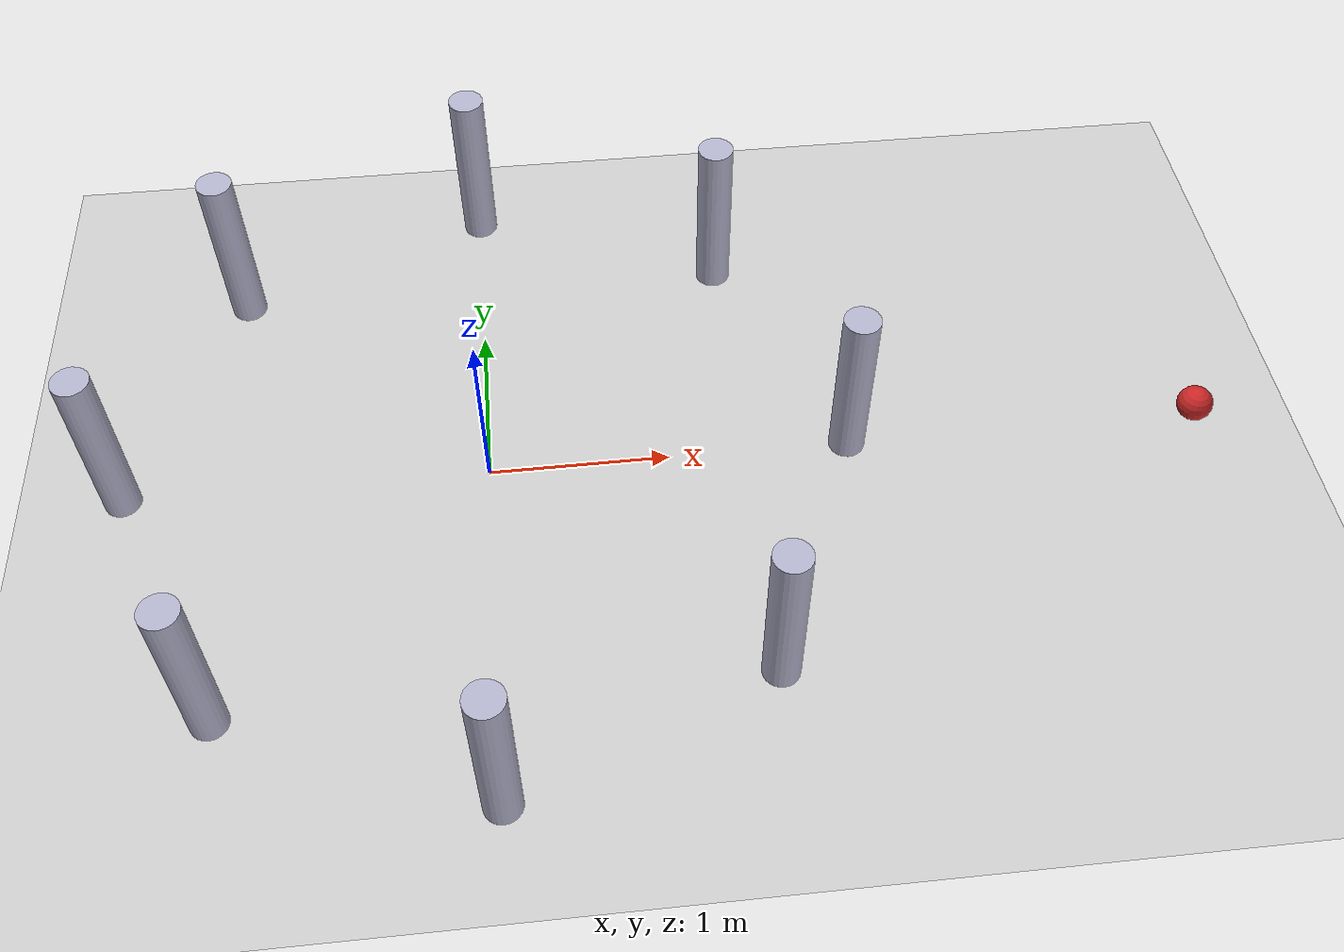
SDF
<sdf version="1.6">
 <world name="default">
  <scene><ambient>0.4 0.4 0.4 1</ambient><background>0.7 0.7 0.7 1</background><shadows>1</shadows></scene>
  <light name="sun" type="directional">
   <pose>0 0 10 0 -0 0</pose>
   <diffuse>0.8 0.8 0.8 1</diffuse>
   <specular>0.2 0.2 0.2 1</specular>
   <attenuation>
    <range>1000</range>
    <constant>0.9</constant>
    <linear>0.01</linear>
    <quadratic>0.001</quadratic>
   </attenuation>
   <direction>-0.5 0.1 -0.9</direction>
  </light>
  <model name="ground_plane">
   <static>1</static>
   <link name="link">
    <collision name="collision">
     <geometry><plane><normal>0 0 1</normal><size>100 100</size></plane></geometry>
     <surface><friction><ode><mu>100</mu><mu2>50</mu2></ode></friction></surface>
    </collision>
    <visual name="visual">
     <cast_shadows>0</cast_shadows>
     <geometry><plane><normal>0 0 1</normal><size>100 100</size></plane></geometry>
     <material>
      <script><uri>file://media/materials/scripts/gazebo.material</uri><name>Gazebo/Grey</name></script>
     </material>
    </visual>
   </link>
  </model>
  <physics name="default_physics" default="0" type="ode">
   <real_time_update_rate>1000</real_time_update_rate>
   <max_step_size>0.001</max_step_size>
   <real_time_factor>1</real_time_factor>
   <ode>
    <solver>
     <type>quick</type>
     <iters>150</iters>
     <precon_iters>0</precon_iters>
     <sor>1.4</sor>
     <use_dynamic_moi_rescaling>1</use_dynamic_moi_rescaling>
    </solver>
    <constraints>
     <cfm>1e-05</cfm>
     <erp>0.2</erp>
     <contact_max_correcting_vel>2000</contact_max_correcting_vel>
     <contact_surface_layer>0.01</contact_surface_layer>
    </constraints>
   </ode>
  </physics>
  <gravity>0 0 -9.8</gravity>
  <magnetic_field>6e-06 2.3e-05 -4.2e-05</magnetic_field>
  <atmosphere type="adiabatic"/>
  <spherical_coordinates>
   <surface_model>EARTH_WGS84</surface_model>
   <latitude_deg>0</latitude_deg>
   <longitude_deg>0</longitude_deg>
   <elevation>0</elevation>
   <heading_deg>0</heading_deg>
  </spherical_coordinates>
  <model name="unit_sphere_0_0">
   <link name="link">
    <inertial>
     <mass>1</mass>
     <inertia><ixx>0.1</ixx><ixy>0</ixy><ixz>0</ixz><iyy>0.1</iyy><iyz>0</iyz><izz>0.1</izz></inertia>
    </inertial>
    <visual name="visual">
     <geometry><sphere><radius>0.1</radius></sphere></geometry>
     <material>
      <script><name>Gazebo/Red</name><uri>file://media/materials/scripts/gazebo.material</uri></script>
      <shader type="pixel"><normal_map>__default__</normal_map></shader>
      <ambient>0.7 0.3 0.3 1</ambient>
      <diffuse>0.9 0.7 0.7 1</diffuse>
      <specular>0.21 0.01 0.01 1</specular>
      <emissive>0 0 0 1</emissive>
     </material>
    </visual>
    <collision name="collision">
     <geometry><sphere><radius>0.1</radius></sphere></geometry>
     <surface>
      <friction>
       <ode><mu>1</mu><mu2>1</mu2><fdir1>0 0 0</fdir1><slip1>0</slip1><slip2>0</slip2></ode>
       <torsional>
        <coefficient>1</coefficient>
        <patch_radius>0</patch_radius>
        <surface_radius>0</surface_radius>
        <use_patch_radius>1</use_patch_radius>
        <ode><slip>0</slip></ode>
       </torsional>
      </friction>
      <bounce><restitution_coefficient>0</restitution_coefficient><threshold>1e+06</threshold></bounce>
      <contact>
       <collide_without_contact>0</collide_without_contact>
       <collide_without_contact_bitmask>1</collide_without_contact_bitmask>
       <collide_bitmask>1</collide_bitmask>
       <ode>
        <soft_cfm>0</soft_cfm>
        <soft_erp>0.2</soft_erp>
        <kp>1e+13</kp>
        <kd>1</kd>
        <max_vel>0.01</max_vel>
        <min_depth>0</min_depth>
       </ode>
       <bullet>
        <split_impulse>1</split_impulse>
        <split_impulse_penetration_threshold>-0.01</split_impulse_penetration_threshold>
        <soft_cfm>0</soft_cfm>
        <soft_erp>0.2</soft_erp>
        <kp>1e+13</kp>
        <kd>1</kd>
       </bullet>
      </contact>
     </surface>
    </collision>
   </link>
   <static>0</static>
   <pose>4 0 0.1 0 -0 0</pose>
  </model>
  <model name="unit_cylinder_blue_clone_0">
   <link name="link">
    <inertial>
     <mass>1</mass>
     <inertia><ixx>0.145833</ixx><ixy>0</ixy><ixz>0</ixz><iyy>0.145833</iyy><iyz>0</iyz><izz>0.125</izz></inertia>
    </inertial>
    <visual name="visual">
     <geometry><cylinder><radius>0.1</radius><length>1</length></cylinder></geometry>
     <material>
      <script><name>Gazebo/Grey</name><uri>file://media/materials/scripts/gazebo.material</uri></script>
      <shader type="pixel"><normal_map>__default__</normal_map></shader>
      <ambient>0.3 0.3 0.6 1</ambient>
      <diffuse>0.7 0.7 0.8 1</diffuse>
      <specular>0.01 0.01 0.21 1</specular>
      <emissive>0 0 0 1</emissive>
     </material>
    </visual>
    <collision name="collision">
     <geometry><cylinder><radius>0.01</radius><length>1</length></cylinder></geometry>
     <surface>
      <friction>
       <ode><mu>1</mu><mu2>1</mu2><fdir1>0 0 0</fdir1><slip1>0</slip1><slip2>0</slip2></ode>
       <torsional>
        <coefficient>1</coefficient>
        <patch_radius>0</patch_radius>
        <surface_radius>0</surface_radius>
        <use_patch_radius>1</use_patch_radius>
        <ode><slip>0</slip></ode>
       </torsional>
      </friction>
      <bounce><restitution_coefficient>0</restitution_coefficient><threshold>1e+06</threshold></bounce>
      <contact>
       <collide_without_contact>0</collide_without_contact>
       <collide_without_contact_bitmask>1</collide_without_contact_bitmask>
       <collide_bitmask>1</collide_bitmask>
       <ode>
        <soft_cfm>0</soft_cfm>
        <soft_erp>0.2</soft_erp>
        <kp>1e+13</kp>
        <kd>1</kd>
        <max_vel>0.01</max_vel>
        <min_depth>0</min_depth>
       </ode>
       <bullet>
        <split_impulse>1</split_impulse>
        <split_impulse_penetration_threshold>-0.01</split_impulse_penetration_threshold>
        <soft_cfm>0</soft_cfm>
        <soft_erp>0.2</soft_erp>
        <kp>1e+13</kp>
        <kd>1</kd>
       </bullet>
      </contact>
     </surface>
    </collision>
   </link>
   <static>1</static>
   <pose>2 0 0.5 6e-06 -4e-06 2.4e-05</pose>
  </model>
  <model name="unit_cylinder_blue_clone_0_clone">
   <link name="link">
    <inertial>
     <mass>1</mass>
     <inertia><ixx>0.145833</ixx><ixy>0</ixy><ixz>0</ixz><iyy>0.145833</iyy><iyz>0</iyz><izz>0.125</izz></inertia>
    </inertial>
    <visual name="visual">
     <geometry><cylinder><radius>0.1</radius><length>1</length></cylinder></geometry>
     <material>
      <script><name>Gazebo/Grey</name><uri>file://media/materials/scripts/gazebo.material</uri></script>
      <shader type="pixel"><normal_map>__default__</normal_map></shader>
      <ambient>0.3 0.3 0.6 1</ambient>
      <diffuse>0.7 0.7 0.8 1</diffuse>
      <specular>0.01 0.01 0.21 1</specular>
      <emissive>0 0 0 1</emissive>
     </material>
    </visual>
    <collision name="collision">
     <geometry><cylinder><radius>0.01</radius><length>1</length></cylinder></geometry>
     <surface>
      <friction>
       <ode><mu>1</mu><mu2>1</mu2><fdir1>0 0 0</fdir1><slip1>0</slip1><slip2>0</slip2></ode>
       <torsional>
        <coefficient>1</coefficient>
        <patch_radius>0</patch_radius>
        <surface_radius>0</surface_radius>
        <use_patch_radius>1</use_patch_radius>
        <ode><slip>0</slip></ode>
       </torsional>
      </friction>
      <bounce><restitution_coefficient>0</restitution_coefficient><threshold>1e+06</threshold></bounce>
      <contact>
       <collide_without_contact>0</collide_without_contact>
       <collide_without_contact_bitmask>1</collide_without_contact_bitmask>
       <collide_bitmask>1</collide_bitmask>
       <ode>
        <soft_cfm>0</soft_cfm>
        <soft_erp>0.2</soft_erp>
        <kp>1e+13</kp>
        <kd>1</kd>
        <max_vel>0.01</max_vel>
        <min_depth>0</min_depth>
       </ode>
       <bullet>
        <split_impulse>1</split_impulse>
        <split_impulse_penetration_threshold>-0.01</split_impulse_penetration_threshold>
        <soft_cfm>0</soft_cfm>
        <soft_erp>0.2</soft_erp>
        <kp>1e+13</kp>
        <kd>1</kd>
       </bullet>
      </contact>
     </surface>
    </collision>
   </link>
   <static>1</static>
   <pose>1.414 1.414 0.5 6e-06 -4e-06 2.4e-05</pose>
  </model>
  <model name="unit_cylinder_blue_clone_0_clone_0">
   <link name="link">
    <inertial>
     <mass>1</mass>
     <inertia><ixx>0.145833</ixx><ixy>0</ixy><ixz>0</ixz><iyy>0.145833</iyy><iyz>0</iyz><izz>0.125</izz></inertia>
    </inertial>
    <visual name="visual">
     <geometry><cylinder><radius>0.1</radius><length>1</length></cylinder></geometry>
     <material>
      <script><name>Gazebo/Grey</name><uri>file://media/materials/scripts/gazebo.material</uri></script>
      <shader type="pixel"><normal_map>__default__</normal_map></shader>
      <ambient>0.3 0.3 0.6 1</ambient>
      <diffuse>0.7 0.7 0.8 1</diffuse>
      <specular>0.01 0.01 0.21 1</specular>
      <emissive>0 0 0 1</emissive>
     </material>
    </visual>
    <collision name="collision">
     <geometry><cylinder><radius>0.01</radius><length>1</length></cylinder></geometry>
     <surface>
      <friction>
       <ode><mu>1</mu><mu2>1</mu2><fdir1>0 0 0</fdir1><slip1>0</slip1><slip2>0</slip2></ode>
       <torsional>
        <coefficient>1</coefficient>
        <patch_radius>0</patch_radius>
        <surface_radius>0</surface_radius>
        <use_patch_radius>1</use_patch_radius>
        <ode><slip>0</slip></ode>
       </torsional>
      </friction>
      <bounce><restitution_coefficient>0</restitution_coefficient><threshold>1e+06</threshold></bounce>
      <contact>
       <collide_without_contact>0</collide_without_contact>
       <collide_without_contact_bitmask>1</collide_without_contact_bitmask>
       <collide_bitmask>1</collide_bitmask>
       <ode>
        <soft_cfm>0</soft_cfm>
        <soft_erp>0.2</soft_erp>
        <kp>1e+13</kp>
        <kd>1</kd>
        <max_vel>0.01</max_vel>
        <min_depth>0</min_depth>
       </ode>
       <bullet>
        <split_impulse>1</split_impulse>
        <split_impulse_penetration_threshold>-0.01</split_impulse_penetration_threshold>
        <soft_cfm>0</soft_cfm>
        <soft_erp>0.2</soft_erp>
        <kp>1e+13</kp>
        <kd>1</kd>
       </bullet>
      </contact>
     </surface>
    </collision>
   </link>
   <static>1</static>
   <pose>0 2 0.5 6e-06 -4e-06 2.4e-05</pose>
  </model>
  <model name="unit_cylinder_blue_clone_0_clone_1">
   <link name="link">
    <inertial>
     <mass>1</mass>
     <inertia><ixx>0.145833</ixx><ixy>0</ixy><ixz>0</ixz><iyy>0.145833</iyy><iyz>0</iyz><izz>0.125</izz></inertia>
    </inertial>
    <visual name="visual">
     <geometry><cylinder><radius>0.1</radius><length>1</length></cylinder></geometry>
     <material>
      <script><name>Gazebo/Grey</name><uri>file://media/materials/scripts/gazebo.material</uri></script>
      <shader type="pixel"><normal_map>__default__</normal_map></shader>
      <ambient>0.3 0.3 0.6 1</ambient>
      <diffuse>0.7 0.7 0.8 1</diffuse>
      <specular>0.01 0.01 0.21 1</specular>
      <emissive>0 0 0 1</emissive>
     </material>
    </visual>
    <collision name="collision">
     <geometry><cylinder><radius>0.01</radius><length>1</length></cylinder></geometry>
     <surface>
      <friction>
       <ode><mu>1</mu><mu2>1</mu2><fdir1>0 0 0</fdir1><slip1>0</slip1><slip2>0</slip2></ode>
       <torsional>
        <coefficient>1</coefficient>
        <patch_radius>0</patch_radius>
        <surface_radius>0</surface_radius>
        <use_patch_radius>1</use_patch_radius>
        <ode><slip>0</slip></ode>
       </torsional>
      </friction>
      <bounce><restitution_coefficient>0</restitution_coefficient><threshold>1e+06</threshold></bounce>
      <contact>
       <collide_without_contact>0</collide_without_contact>
       <collide_without_contact_bitmask>1</collide_without_contact_bitmask>
       <collide_bitmask>1</collide_bitmask>
       <ode>
        <soft_cfm>0</soft_cfm>
        <soft_erp>0.2</soft_erp>
        <kp>1e+13</kp>
        <kd>1</kd>
        <max_vel>0.01</max_vel>
        <min_depth>0</min_depth>
       </ode>
       <bullet>
        <split_impulse>1</split_impulse>
        <split_impulse_penetration_threshold>-0.01</split_impulse_penetration_threshold>
        <soft_cfm>0</soft_cfm>
        <soft_erp>0.2</soft_erp>
        <kp>1e+13</kp>
        <kd>1</kd>
       </bullet>
      </contact>
     </surface>
    </collision>
   </link>
   <static>1</static>
   <pose>-1.414 1.414 0.5 6e-06 -4e-06 2.4e-05</pose>
  </model>
  <model name="unit_cylinder_blue_clone_0_clone_2">
   <link name="link">
    <inertial>
     <mass>1</mass>
     <inertia><ixx>0.145833</ixx><ixy>0</ixy><ixz>0</ixz><iyy>0.145833</iyy><iyz>0</iyz><izz>0.125</izz></inertia>
    </inertial>
    <visual name="visual">
     <geometry><cylinder><radius>0.1</radius><length>1</length></cylinder></geometry>
     <material>
      <script><name>Gazebo/Grey</name><uri>file://media/materials/scripts/gazebo.material</uri></script>
      <shader type="pixel"><normal_map>__default__</normal_map></shader>
      <ambient>0.3 0.3 0.6 1</ambient>
      <diffuse>0.7 0.7 0.8 1</diffuse>
      <specular>0.01 0.01 0.21 1</specular>
      <emissive>0 0 0 1</emissive>
     </material>
    </visual>
    <collision name="collision">
     <geometry><cylinder><radius>0.01</radius><length>1</length></cylinder></geometry>
     <surface>
      <friction>
       <ode><mu>1</mu><mu2>1</mu2><fdir1>0 0 0</fdir1><slip1>0</slip1><slip2>0</slip2></ode>
       <torsional>
        <coefficient>1</coefficient>
        <patch_radius>0</patch_radius>
        <surface_radius>0</surface_radius>
        <use_patch_radius>1</use_patch_radius>
        <ode><slip>0</slip></ode>
       </torsional>
      </friction>
      <bounce><restitution_coefficient>0</restitution_coefficient><threshold>1e+06</threshold></bounce>
      <contact>
       <collide_without_contact>0</collide_without_contact>
       <collide_without_contact_bitmask>1</collide_without_contact_bitmask>
       <collide_bitmask>1</collide_bitmask>
       <ode>
        <soft_cfm>0</soft_cfm>
        <soft_erp>0.2</soft_erp>
        <kp>1e+13</kp>
        <kd>1</kd>
        <max_vel>0.01</max_vel>
        <min_depth>0</min_depth>
       </ode>
       <bullet>
        <split_impulse>1</split_impulse>
        <split_impulse_penetration_threshold>-0.01</split_impulse_penetration_threshold>
        <soft_cfm>0</soft_cfm>
        <soft_erp>0.2</soft_erp>
        <kp>1e+13</kp>
        <kd>1</kd>
       </bullet>
      </contact>
     </surface>
    </collision>
   </link>
   <static>1</static>
   <pose>-2 0 0.5 6e-06 -4e-06 2.4e-05</pose>
  </model>
  <model name="unit_cylinder_blue_clone_0_clone_3">
   <link name="link">
    <inertial>
     <mass>1</mass>
     <inertia><ixx>0.145833</ixx><ixy>0</ixy><ixz>0</ixz><iyy>0.145833</iyy><iyz>0</iyz><izz>0.125</izz></inertia>
    </inertial>
    <visual name="visual">
     <geometry><cylinder><radius>0.1</radius><length>1</length></cylinder></geometry>
     <material>
      <script><name>Gazebo/Grey</name><uri>file://media/materials/scripts/gazebo.material</uri></script>
      <shader type="pixel"><normal_map>__default__</normal_map></shader>
      <ambient>0.3 0.3 0.6 1</ambient>
      <diffuse>0.7 0.7 0.8 1</diffuse>
      <specular>0.01 0.01 0.21 1</specular>
      <emissive>0 0 0 1</emissive>
     </material>
    </visual>
    <collision name="collision">
     <geometry><cylinder><radius>0.01</radius><length>1</length></cylinder></geometry>
     <surface>
      <friction>
       <ode><mu>1</mu><mu2>1</mu2><fdir1>0 0 0</fdir1><slip1>0</slip1><slip2>0</slip2></ode>
       <torsional>
        <coefficient>1</coefficient>
        <patch_radius>0</patch_radius>
        <surface_radius>0</surface_radius>
        <use_patch_radius>1</use_patch_radius>
        <ode><slip>0</slip></ode>
       </torsional>
      </friction>
      <bounce><restitution_coefficient>0</restitution_coefficient><threshold>1e+06</threshold></bounce>
      <contact>
       <collide_without_contact>0</collide_without_contact>
       <collide_without_contact_bitmask>1</collide_without_contact_bitmask>
       <collide_bitmask>1</collide_bitmask>
       <ode>
        <soft_cfm>0</soft_cfm>
        <soft_erp>0.2</soft_erp>
        <kp>1e+13</kp>
        <kd>1</kd>
        <max_vel>0.01</max_vel>
        <min_depth>0</min_depth>
       </ode>
       <bullet>
        <split_impulse>1</split_impulse>
        <split_impulse_penetration_threshold>-0.01</split_impulse_penetration_threshold>
        <soft_cfm>0</soft_cfm>
        <soft_erp>0.2</soft_erp>
        <kp>1e+13</kp>
        <kd>1</kd>
       </bullet>
      </contact>
     </surface>
    </collision>
   </link>
   <static>1</static>
   <pose>-1.414 -1.414 0.5 6e-06 -4e-06 2.4e-05</pose>
  </model>
  <model name="unit_cylinder_blue_clone_0_clone_4">
   <link name="link">
    <inertial>
     <mass>1</mass>
     <inertia><ixx>0.145833</ixx><ixy>0</ixy><ixz>0</ixz><iyy>0.145833</iyy><iyz>0</iyz><izz>0.125</izz></inertia>
    </inertial>
    <visual name="visual">
     <geometry><cylinder><radius>0.1</radius><length>1</length></cylinder></geometry>
     <material>
      <script><name>Gazebo/Grey</name><uri>file://media/materials/scripts/gazebo.material</uri></script>
      <shader type="pixel"><normal_map>__default__</normal_map></shader>
      <ambient>0.3 0.3 0.6 1</ambient>
      <diffuse>0.7 0.7 0.8 1</diffuse>
      <specular>0.01 0.01 0.21 1</specular>
      <emissive>0 0 0 1</emissive>
     </material>
    </visual>
    <collision name="collision">
     <geometry><cylinder><radius>0.01</radius><length>1</length></cylinder></geometry>
     <surface>
      <friction>
       <ode><mu>1</mu><mu2>1</mu2><fdir1>0 0 0</fdir1><slip1>0</slip1><slip2>0</slip2></ode>
       <torsional>
        <coefficient>1</coefficient>
        <patch_radius>0</patch_radius>
        <surface_radius>0</surface_radius>
        <use_patch_radius>1</use_patch_radius>
        <ode><slip>0</slip></ode>
       </torsional>
      </friction>
      <bounce><restitution_coefficient>0</restitution_coefficient><threshold>1e+06</threshold></bounce>
      <contact>
       <collide_without_contact>0</collide_without_contact>
       <collide_without_contact_bitmask>1</collide_without_contact_bitmask>
       <collide_bitmask>1</collide_bitmask>
       <ode>
        <soft_cfm>0</soft_cfm>
        <soft_erp>0.2</soft_erp>
        <kp>1e+13</kp>
        <kd>1</kd>
        <max_vel>0.01</max_vel>
        <min_depth>0</min_depth>
       </ode>
       <bullet>
        <split_impulse>1</split_impulse>
        <split_impulse_penetration_threshold>-0.01</split_impulse_penetration_threshold>
        <soft_cfm>0</soft_cfm>
        <soft_erp>0.2</soft_erp>
        <kp>1e+13</kp>
        <kd>1</kd>
       </bullet>
      </contact>
     </surface>
    </collision>
   </link>
   <static>1</static>
   <pose>0 -2 0.5 6e-06 -4e-06 2.4e-05</pose>
  </model>
  <model name="unit_cylinder_blue_clone_0_clone_5">
   <link name="link">
    <inertial>
     <mass>1</mass>
     <inertia><ixx>0.145833</ixx><ixy>0</ixy><ixz>0</ixz><iyy>0.145833</iyy><iyz>0</iyz><izz>0.125</izz></inertia>
    </inertial>
    <visual name="visual">
     <geometry><cylinder><radius>0.1</radius><length>1</length></cylinder></geometry>
     <material>
      <script><name>Gazebo/Grey</name><uri>file://media/materials/scripts/gazebo.material</uri></script>
      <shader type="pixel"><normal_map>__default__</normal_map></shader>
      <ambient>0.3 0.3 0.6 1</ambient>
      <diffuse>0.7 0.7 0.8 1</diffuse>
      <specular>0.01 0.01 0.21 1</specular>
      <emissive>0 0 0 1</emissive>
     </material>
    </visual>
    <collision name="collision">
     <geometry><cylinder><radius>0.01</radius><length>1</length></cylinder></geometry>
     <surface>
      <friction>
       <ode><mu>1</mu><mu2>1</mu2><fdir1>0 0 0</fdir1><slip1>0</slip1><slip2>0</slip2></ode>
       <torsional>
        <coefficient>1</coefficient>
        <patch_radius>0</patch_radius>
        <surface_radius>0</surface_radius>
        <use_patch_radius>1</use_patch_radius>
        <ode><slip>0</slip></ode>
       </torsional>
      </friction>
      <bounce><restitution_coefficient>0</restitution_coefficient><threshold>1e+06</threshold></bounce>
      <contact>
       <collide_without_contact>0</collide_without_contact>
       <collide_without_contact_bitmask>1</collide_without_contact_bitmask>
       <collide_bitmask>1</collide_bitmask>
       <ode>
        <soft_cfm>0</soft_cfm>
        <soft_erp>0.2</soft_erp>
        <kp>1e+13</kp>
        <kd>1</kd>
        <max_vel>0.01</max_vel>
        <min_depth>0</min_depth>
       </ode>
       <bullet>
        <split_impulse>1</split_impulse>
        <split_impulse_penetration_threshold>-0.01</split_impulse_penetration_threshold>
        <soft_cfm>0</soft_cfm>
        <soft_erp>0.2</soft_erp>
        <kp>1e+13</kp>
        <kd>1</kd>
       </bullet>
      </contact>
     </surface>
    </collision>
   </link>
   <static>1</static>
   <pose>1.414 -1.414 0.5 6e-06 -4e-06 2.4e-05</pose>
  </model>
 </world>
</sdf>
